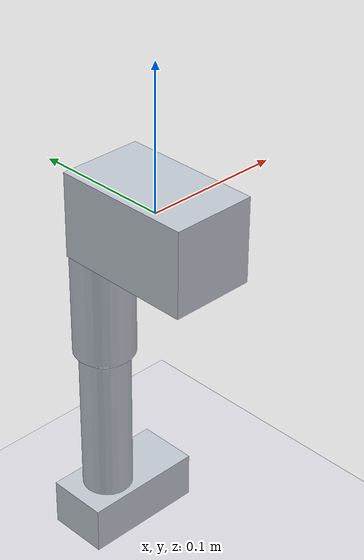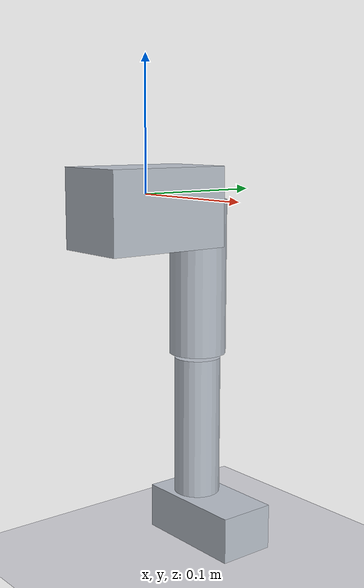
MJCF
<mujoco model="cara_left_leg_dynamic">
  <compiler angle="radian" autolimits="true"/>
  <option gravity="0 0 -9.81" timestep="0.002" integrator="implicitfast"/>

  <visual>
    <headlight diffuse="0.6 0.6 0.6" ambient="0.35 0.35 0.35" specular="0 0 0"/>
    <rgba haze="0.15 0.25 0.35 1"/>
    <global azimuth="130" elevation="-20"/>
  </visual>

  <default>
    <geom contype="0" conaffinity="0" group="2"/>   <!-- link geoms: visual only -->
    <site type="sphere" size="0.006" group="3"/>
  </default>

  <worldbody>
    <light pos="0 0 1.5" dir="0 0 -1" diffuse="0.5 0.5 0.5"/>
    <geom name="floor" type="plane" size="0.6 0.6 0.02" pos="0 0 -0.275" contype="1" conaffinity="1" condim="3" friction="1 0.005 0.0001" rgba="0.85 0.85 0.88 1" group="1"/>

    <body name="pelvis" pos="0 0 0">
      <inertial pos="0 0 -0.01" mass="0.85" diaginertia="0.000963333333 0.00051 0.000963333333"/>
      <geom type="box" size="0.03 0.05 0.03" pos="0 0 -0.01" rgba="0.75 0.78 0.82 1"/>
      <site name="pelvis_frame" pos="0 0 0" rgba="0.9 0.5 0.2 1"/>
      <body name="l_thigh" pos="0 0.05 0">
        <joint name="l_hip_yaw" type="hinge" pos="0 0 0" axis="0 0 1" range="-0.79 0.79"/>
        <joint name="l_hip_roll" type="hinge" pos="0 0 0" axis="1 0 0" range="-0.52 0.61"/>
        <joint name="l_hip_pitch" type="hinge" pos="0 0 0" axis="0 1 0" range="-1.75 1.05"/>
        <inertial pos="0 0 -0.066" mass="0.22" diaginertia="0.000264 0.000264 5.324e-05"/>
        <geom type="cylinder" size="0.022 0.06" pos="0 0 -0.066" rgba="0.75 0.78 0.82 1"/>
        <site name="l_thigh_frame" pos="0 0 0" rgba="0.9 0.5 0.2 1"/>
        <body name="l_shin" pos="0 0 -0.12">
          <joint name="l_knee_pitch" type="hinge" pos="0 0 0" axis="0 1 0" range="0 2.36"/>
          <inertial pos="0 0 -0.0696" mass="0.18" diaginertia="0.000216 0.000216 2.916e-05"/>
          <geom type="cylinder" size="0.018 0.06" pos="0 0 -0.0696" rgba="0.75 0.78 0.82 1"/>
          <site name="l_shin_frame" pos="0 0 0" rgba="0.9 0.5 0.2 1"/>
          <body name="l_foot" pos="0 0 -0.12">
            <joint name="l_ankle_pitch" type="hinge" pos="0 0 0" axis="0 1 0" range="-0.87 0.61"/>
            <joint name="l_ankle_roll" type="hinge" pos="0 0 0" axis="1 0 0" range="-0.44 0.44"/>
            <inertial pos="0.015 0 -0.0175" mass="0.08" diaginertia="2.16666667e-05 6.21666667e-05 6.75e-05"/>
            <geom type="box" size="0.045 0.0225 0.0175" pos="0.015 0 -0.0175" rgba="0.75 0.78 0.82 1"/>
            <geom name="l_foot_collision" type="box" size="0.045 0.0225 0.0175" pos="0.015 0 -0.0175" contype="1" conaffinity="1" condim="3" friction="1 0.005 0.0001" rgba="0.9 0.6 0.3 0.35" group="4"/>
            <site name="l_foot_frame" pos="0 0 0" rgba="0.9 0.5 0.2 1"/>
            <site name="l_foot_sole_center" pos="0.015 0 -0.035" rgba="0.2 0.7 0.4 1"/>
          </body>
        </body>
      </body>
    </body>
  </worldbody>

  <keyframe>
    <key name="zero" qpos="0 0 0 0 0 0" ctrl="0 0 0 0 0 0"/>
    <key name="stand_micro_bend" qpos="0 0 -0.1 0.2 -0.1 0" ctrl="0 0 -0.1 0.2 -0.1 0"/>
    <key name="half_crouch" qpos="0 0 -0.45 0.9 -0.45 0" ctrl="0 0 -0.45 0.9 -0.45 0"/>
    <key name="deep_crouch" qpos="0 0 -0.9 1.7 -0.8 0" ctrl="0 0 -0.9 1.7 -0.8 0"/>
    <key name="leg_swing_forward" qpos="0 0 -0.5 0.6 0 0" ctrl="0 0 -0.5 0.6 0 0"/>
    <key name="knee_lift" qpos="0 0 -0.7 1.3 0 0" ctrl="0 0 -0.7 1.3 0 0"/>
    <key name="ankle_tilt" qpos="0 0 -0.3 0.6 -0.3 0.35" ctrl="0 0 -0.3 0.6 -0.3 0.35"/>
  </keyframe>

  <actuator>
    <position name="l_hip_yaw" joint="l_hip_yaw" kp="30" dampratio="1" ctrlrange="-0.79 0.79" forcerange="-3 3"/>
    <position name="l_hip_roll" joint="l_hip_roll" kp="30" dampratio="1" ctrlrange="-0.52 0.61" forcerange="-3 3"/>
    <position name="l_hip_pitch" joint="l_hip_pitch" kp="45" dampratio="1" ctrlrange="-1.75 1.05" forcerange="-3 3"/>
    <position name="l_knee_pitch" joint="l_knee_pitch" kp="45" dampratio="1" ctrlrange="0 2.36" forcerange="-3 3"/>
    <position name="l_ankle_pitch" joint="l_ankle_pitch" kp="30" dampratio="1" ctrlrange="-0.87 0.61" forcerange="-2 2"/>
    <position name="l_ankle_roll" joint="l_ankle_roll" kp="30" dampratio="1" ctrlrange="-0.44 0.44" forcerange="-2 2"/>
  </actuator>

</mujoco>
